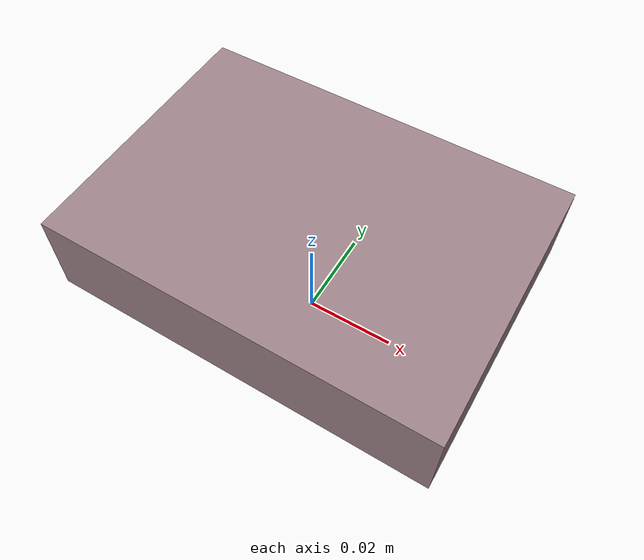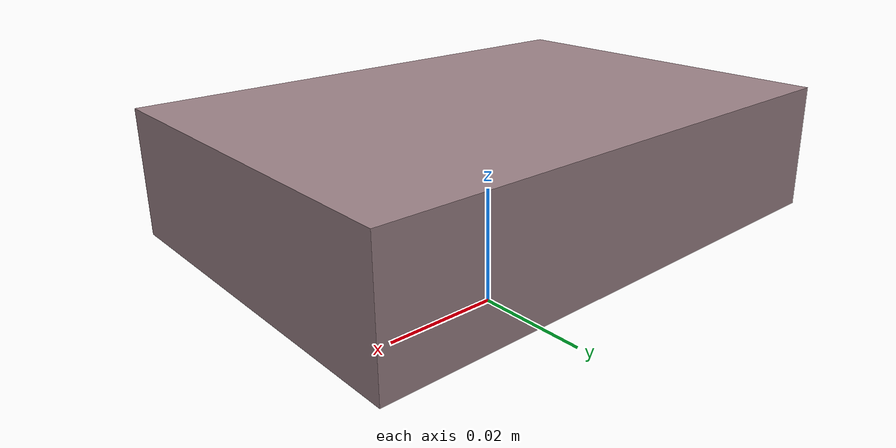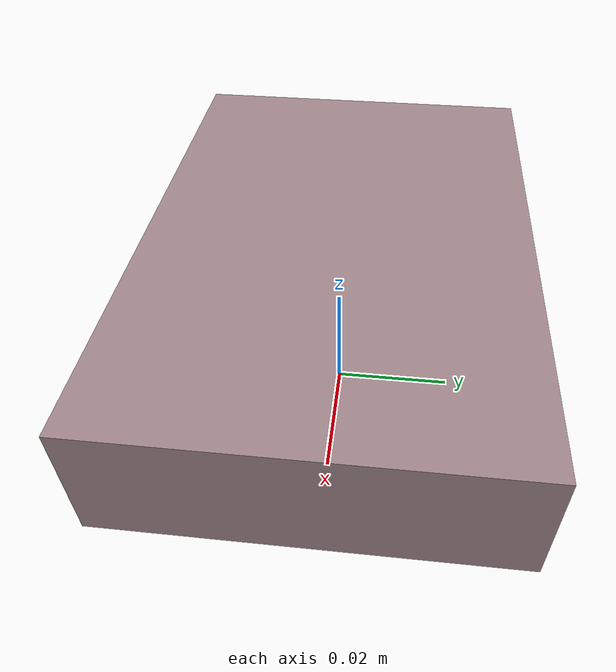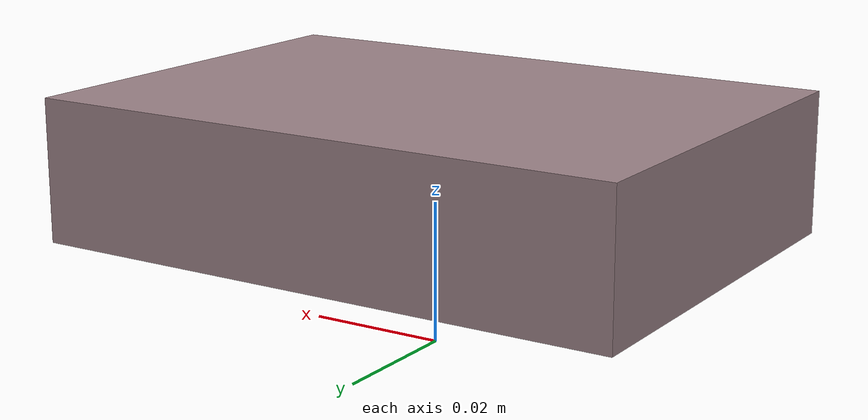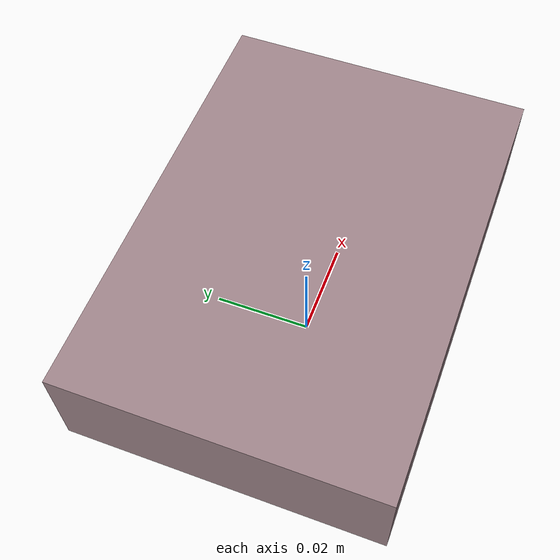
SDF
<?xml version="1.0"?>
<sdf version="1.7">
  <model name="Pound_Cake_OBJ">
    <link name="base_link">
      <inertial>
        <pose>0 0 0.025 0 0 0 </pose>
        <mass>0.028</mass>
        <inertia>
          <ixx>1.17e-5</ixx>
          <ixy>0</ixy>
          <ixz>0</ixz>
          <iyy>1.9e-5</iyy>
          <iyz>0</iyz>
          <izz>1.9e-5</izz>
        </inertia>
      </inertial>
      <visual name="base_link">
        <pose>0 0 0.025 0 0 0</pose>
        <geometry>
          <box>
            <size>0.085 0.06 0.02</size>
          </box>
        </geometry>
        <material>
          <diffuse>0.61 0.51 0.53 1.0</diffuse>
        </material>
      </visual>
      <collision name="box_collision">
        <pose>0 0 0.025 0 0 0</pose>
        <geometry>
          <box>
            <size>0.084 0.059 0.019</size>
          </box>
        </geometry>
        <drake:proximity_properties>
          <drake:compliant_hydroelastic/>
          <drake:hydroelastic_modulus>1.0e5</drake:hydroelastic_modulus>
        </drake:proximity_properties>
      </collision>
    </link>
  </model>
</sdf>
